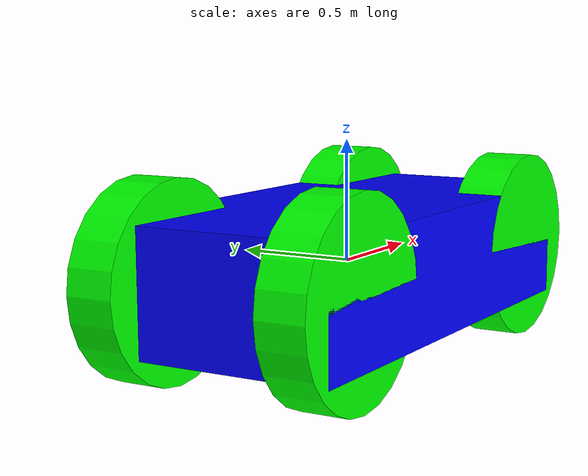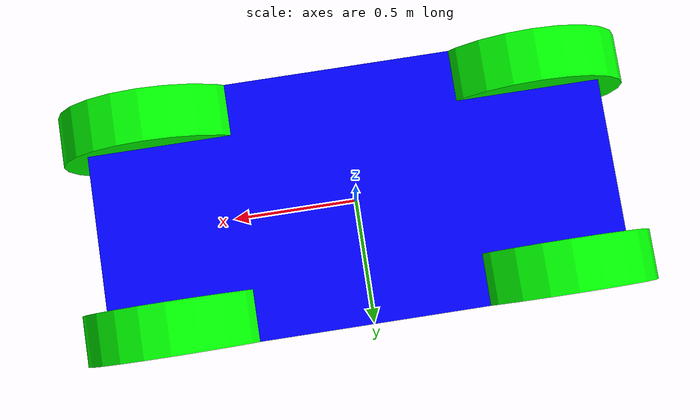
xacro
<?xml version="1.0"?>
<robot xmlns:xacro="https://www.ros.org/wiki/xacro" name="rover">

<!-- generate links -->
<xacro:include filename="rover_chassis.urdf.xacro" />
<xacro:chassis name="chassis" />

<!-- generate joints -->

<!-- Front left -->
<xacro:include filename="wheel_front_left.urdf.xacro" />
<xacro:front_left name="front_left" parent="chassis" />

<!-- Front right -->
<xacro:include filename="wheel_front_right.urdf.xacro" />
<xacro:front_right name="front_right" parent="chassis" />

<!-- Rear left -->
<xacro:include filename="wheel_rear_left.urdf.xacro" />
<xacro:rear_left name="rear_left" parent="chassis" />

<!-- Rear right -->
<xacro:include filename="wheel_rear_right.urdf.xacro" />
<xacro:rear_right name="rear_right" parent="chassis" />

<!-- generate plugin for camera -->

<!-- generate plugin for lidar -->

<!-- generate plugin for imu -->

</robot>

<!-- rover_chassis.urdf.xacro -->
<robot xmlns:xacro="https://www.ros.org/wiki/xacro" name="rover">
<xacro:macro name="chassis" params="name">

    <link name="${name}" >
        <visual>
            <geometry>
                <box size="2.0 1.0 0.5"/>
            </geometry>
            <material name="Black">
                <color rgba="0.0 0.0 1.0 1"/>
            </material>
        </visual>
        <collision>
            <geometry>
                <box size="2.0 1.0 0.5"/>
            </geometry>
        </collision>

        <inertial>
            <mass value="1.14395"/>
            <inertia ixx="0.095329" ixy="0" ixz="0" iyz="0" iyy="0.381317" izz="0.476646"/>
        </inertial>

    </link>

</xacro:macro>
</robot>

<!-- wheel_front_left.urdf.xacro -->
<robot xmlns:xacro="https://www.ros.org/wiki/xacro" name="rover">
<xacro:macro name="front_left" params="name parent">
    <link name="${name}_wheel" >
        <visual>
            <geometry>
                <cylinder radius="0.4" length="0.2" />
            </geometry>
            <material name="green">
                <color rgba="0.0 1.0 0.0 1" />
            </material>
            <origin rpy="1.5708 0 0" />
        </visual>

        <collision>
            <geometry>
                <cylinder radius="0.4" length="0.2" />
            </geometry>
        </collision>

        <inertial>
            <mass value="1" />
            <inertia ixx="0.043333" iyy="0.043333" izz="0.08" ixy="0" ixz="0" iyz="0" />
        </inertial>

    </link>

    <joint name="${name}_joint" type="continuous">
        <parent link="${parent}"/>
        <child link="${name}_wheel"/>
        <origin xyz="0.75 0.4 0" />
        <axis xyz="0 1 0"/>

    </joint>

</xacro:macro>
</robot>

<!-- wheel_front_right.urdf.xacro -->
<robot xmlns:xacro="https://www.ros.org/wiki/xacro" name="rover">
<xacro:macro name="front_right" params="name parent">
    <link name="${name}_wheel" >
        <visual>
            <geometry>
                <cylinder radius="0.4" length="0.2" />
            </geometry>
            <material name="green">
                <color rgba="0.0 1.0 0.0 1" />
            </material>
            <origin rpy="1.5708 0 0" />
        </visual>

        <collision>
            <geometry>
                <cylinder radius="0.4" length="0.2" />
            </geometry>
        </collision>

        <inertial>
            <mass value="1" />
            <inertia ixx="0.043333" iyy="0.043333" izz="0.08" ixy="0" ixz="0" iyz="0" />
        </inertial>

    </link>

    <joint name="${name}_joint" type="continuous">
        <parent link="${parent}"/>
        <child link="${name}_wheel"/>
        <origin xyz="0.75 -0.4 0" />
        <axis xyz="0 1 0"/>

    </joint>
</xacro:macro>
</robot>

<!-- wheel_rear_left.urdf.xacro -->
<robot xmlns:xacro="https://www.ros.org/wiki/xacro" name="rover">
<xacro:macro name="rear_left" params="name parent">
    <link name="${name}_wheel" >
        <visual>
            <geometry>
                <cylinder radius="0.4" length="0.2" />
            </geometry>
            <material name="green">
                <color rgba="0.0 1.0 0.0 1" />
            </material>
            <origin rpy="1.5708 0 0" />
        </visual>

        <collision>
            <geometry>
                <cylinder radius="0.4" length="0.2" />
            </geometry>
        </collision>

        <inertial>
            <mass value="1" />
            <inertia ixx="0.043333" iyy="0.043333" izz="0.08" ixy="0" ixz="0" iyz="0" />
        </inertial>

    </link>

    <joint name="${name}_joint" type="continuous">
        <parent link="${parent}"/>
        <child link="${name}_wheel"/>
        <origin xyz="-0.75 0.4 0"/>
        <axis xyz="0 1 0"/>

    </joint>
</xacro:macro>
</robot>

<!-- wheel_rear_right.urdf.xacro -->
<robot xmlns:xacro="https://www.ros.org/wiki/xacro" name="rover">
<xacro:macro name="rear_right" params="name parent">
    <link name="${name}_wheel" >
        <visual>
            <geometry>
                <cylinder radius="0.4" length="0.2" />
            </geometry>
            <material name="green">
                <color rgba="0.0 1.0 0.0 1" />
            </material>
            <origin rpy="1.5708 0 0" />
        </visual>

        <collision>
            <geometry>
                <cylinder radius="0.4" length="0.2" />
            </geometry>
        </collision>

        <inertial>
            <mass value="1" />
            <inertia ixx="0.043333" iyy="0.043333" izz="0.08" ixy="0" ixz="0" iyz="0" />
        </inertial>

    </link>

    <joint name="${name}_joint" type="continuous">
        <parent link="${parent}"/>
        <child link="${name}_wheel"/>
        <origin xyz="-0.75 -0.4 0" />
        <axis xyz="0 1 0"/>

    </joint>
</xacro:macro>
</robot>
